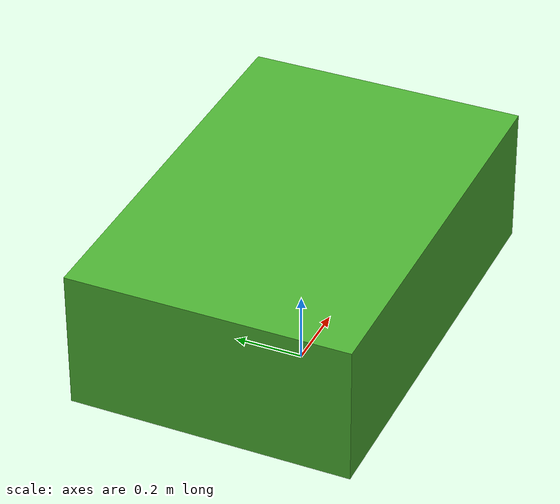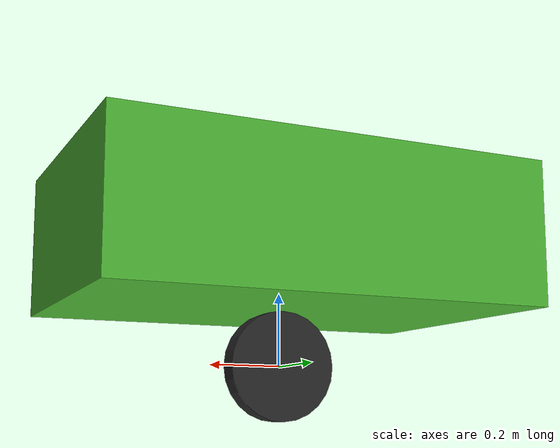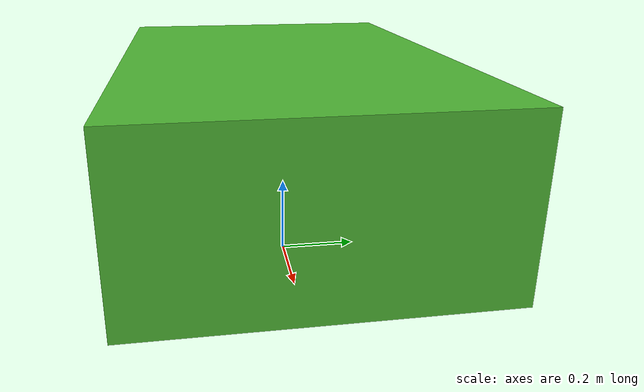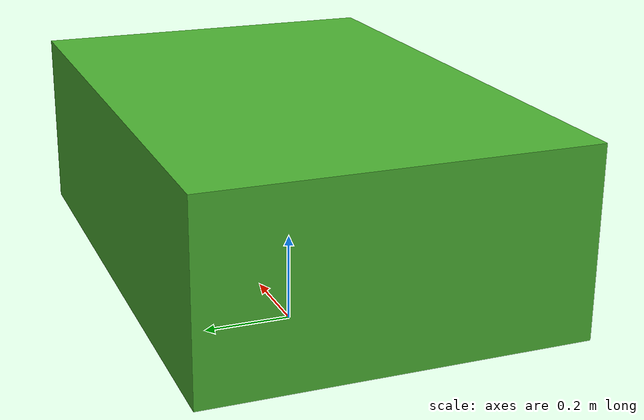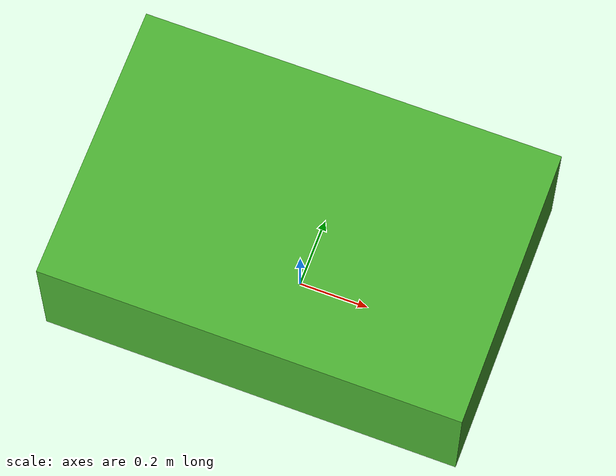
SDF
<?xml version="1.0" encoding="UTF-8"?>
<sdf version="1.8">
<model name="vineyard_mower">

  <!-- base_link: chassis center, origin at ground-plane projection  -->
  <link name="base_link">
    <pose>0 0 0  0 0 0</pose>

    <inertial>
      <pose>0 0 0.35  0 0 0</pose>
      <mass>250.0</mass>
      <inertia>
        <!-- Box 1.2x0.8x0.4: Ixx = m/12*(y^2+z^2), Iyy = m/12*(x^2+z^2), Izz = m/12*(x^2+y^2) -->
        <ixx>16.667</ixx>
        <ixy>0.0</ixy>
        <ixz>0.0</ixz>
        <iyy>33.333</iyy>
        <iyz>0.0</iyz>
        <izz>43.333</izz>
      </inertia>
    </inertial>

    <visual name="chassis_visual">
      <pose>0 0 0.35  0 0 0</pose>
      <geometry>
        <box>
          <size>1.2 0.8 0.4</size>
        </box>
      </geometry>
      <material>
        <ambient>0.2 0.5 0.1 1</ambient>
        <diffuse>0.3 0.7 0.2 1</diffuse>
        <specular>0.1 0.1 0.1 1</specular>
      </material>
    </visual>

    <collision name="chassis_collision">
      <pose>0 0 0.35  0 0 0</pose>
      <geometry>
        <box>
          <size>1.2 0.8 0.4</size>
        </box>
      </geometry>
    </collision>
  </link>

  <!-- front left wheel -->
  <link name="left_front_wheel">
    <pose>0 0 0  1.5708 0 0</pose>
    <inertial>
      <mass>2.0</mass>
      <inertia>
        <ixx>0.0225</ixx>   <!-- around rotation axis = 1/2*m*r² -->
        <ixy>0.0</ixy>
        <ixz>0.0</ixz>
        <iyy>0.0119</iyy>   <!-- transverse = 1/12*m*(3r²+L²) -->
        <iyz>0.0</iyz>
        <izz>0.0119</izz>
      </inertia>
    </inertial>
    <visual name="lf_wheel_visual">
      <geometry>
        <cylinder>
          <radius>0.15</radius>
          <length>0.06</length>
        </cylinder>
      </geometry>
      <material>
        <ambient>0.1 0.1 0.1 1</ambient>
        <diffuse>0.15 0.15 0.15 1</diffuse>
      </material>
    </visual>
    <collision name="lf_wheel_collision">
      <geometry>
        <cylinder>
          <radius>0.15</radius>
          <length>0.06</length>
        </cylinder>
      </geometry>
      <surface>
        <friction>
          <ode>
            <mu>1.0</mu>
            <mu2>1.0</mu2>
          </ode>
        </friction>
      </surface>
    </collision>
  </link>

  <!-- rear left wheel -->
  <link name="left_rear_wheel">
    <pose>0 0 0  1.5708 0 0</pose>
    <inertial>
      <mass>2.0</mass>
      <inertia>
        <ixx>0.0225</ixx>   <!-- around rotation axis = 1/2*m*r² -->
        <ixy>0.0</ixy>
        <ixz>0.0</ixz>
        <iyy>0.0119</iyy>   <!-- transverse = 1/12*m*(3r²+L²) -->
        <iyz>0.0</iyz>
        <izz>0.0119</izz>
      </inertia>
    </inertial>
    <visual name="lr_wheel_visual">
      <geometry>
        <cylinder>
          <radius>0.15</radius>
          <length>0.06</length>
        </cylinder>
      </geometry>
      <material>
        <ambient>0.1 0.1 0.1 1</ambient>
        <diffuse>0.15 0.15 0.15 1</diffuse>
      </material>
    </visual>
    <collision name="lr_wheel_collision">
      <geometry>
        <cylinder>
          <radius>0.15</radius>
          <length>0.06</length>
        </cylinder>
      </geometry>
      <surface>
        <friction>
          <ode>
            <mu>1.0</mu>
            <mu2>1.0</mu2>
          </ode>
        </friction>
      </surface>
    </collision>
  </link>

  <!-- front right wheel -->
  <link name="right_front_wheel">
    <pose>0 0 0  1.5708 0 0</pose>
    <inertial>
      <mass>2.0</mass>
      <inertia>
        <ixx>0.0225</ixx>   <!-- around rotation axis = 1/2*m*r² -->
        <ixy>0.0</ixy>
        <ixz>0.0</ixz>
        <iyy>0.0119</iyy>   <!-- transverse = 1/12*m*(3r²+L²) -->
        <iyz>0.0</iyz>
        <izz>0.0119</izz>
      </inertia>
    </inertial>
    <visual name="rf_wheel_visual">
      <geometry>
        <cylinder>
          <radius>0.15</radius>
          <length>0.06</length>
        </cylinder>
      </geometry>
      <material>
        <ambient>0.1 0.1 0.1 1</ambient>
        <diffuse>0.15 0.15 0.15 1</diffuse>
      </material>
    </visual>
    <collision name="rf_wheel_collision">
      <geometry>
        <cylinder>
          <radius>0.15</radius>
          <length>0.06</length>
        </cylinder>
      </geometry>
      <surface>
        <friction>
          <ode>
            <mu>1.0</mu>
            <mu2>1.0</mu2>
          </ode>
        </friction>
      </surface>
    </collision>
  </link>

  <!-- rear right wheel -->
  <link name="right_rear_wheel">
    <pose>0 0 0  1.5708 0 0</pose>
    <inertial>
      <mass>2.0</mass>
      <inertia>
        <ixx>0.0225</ixx>   <!-- around rotation axis = 1/2*m*r² -->
        <ixy>0.0</ixy>
        <ixz>0.0</ixz>
        <iyy>0.0119</iyy>   <!-- transverse = 1/12*m*(3r²+L²) -->
        <iyz>0.0</iyz>
        <izz>0.0119</izz>
      </inertia>
    </inertial>
    <visual name="rr_wheel_visual">
      <geometry>
        <cylinder>
          <radius>0.15</radius>
          <length>0.06</length>
        </cylinder>
      </geometry>
      <material>
        <ambient>0.1 0.1 0.1 1</ambient>
        <diffuse>0.15 0.15 0.15 1</diffuse>
      </material>
    </visual>
    <collision name="rr_wheel_collision">
      <geometry>
        <cylinder>
          <radius>0.15</radius>
          <length>0.06</length>
        </cylinder>
      </geometry>
      <surface>
        <friction>
          <ode>
            <mu>1.0</mu>
            <mu2>1.0</mu2>
          </ode>
        </friction>
      </surface>
    </collision>
  </link>

  <!-- front-left joint -->
  <joint name="left_front_joint" type="revolute">
    <parent>base_link</parent>
    <child>left_front_wheel</child>
    <pose>0.45 0.325 0.15  0 0 0</pose>
    <axis>
      <xyz>0 1 0</xyz>
      <limit>
        <lower>-1e16</lower>
        <upper>1e16</upper>
      </limit>
    </axis>
  </joint>

  <!-- rear-left joint -->
  <joint name="left_rear_joint" type="revolute">
    <parent>base_link</parent>
    <child>left_rear_wheel</child>
    <pose>-0.45 0.325 0.15  0 0 0</pose>
    <axis>
      <xyz>0 1 0</xyz>
      <limit>
        <lower>-1e16</lower>
        <upper>1e16</upper>
      </limit>
    </axis>
  </joint>

  <!-- front-right joint -->
  <joint name="right_front_joint" type="revolute">
    <parent>base_link</parent>
    <child>right_front_wheel</child>
    <pose>0.45 -0.325 0.15  0 0 0</pose>
    <axis>
      <xyz>0 1 0</xyz>
      <limit>
        <lower>-1e16</lower>
        <upper>1e16</upper>
      </limit>
    </axis>
  </joint>

  <!-- rear-right joint -->
  <joint name="right_rear_joint" type="revolute">
    <parent>base_link</parent>
    <child>right_rear_wheel</child>
    <pose>-0.45 -0.325 0.15  0 0 0</pose>
    <axis>
      <xyz>0 1 0</xyz>
      <limit>
        <lower>-1e16</lower>
        <upper>1e16</upper>
      </limit>
    </axis>
  </joint>

  <!-- Plugins                                                        -->

  <!-- DiffDrive: left wheels + right wheels driven together -->
  <plugin
    filename="gz-sim-diff-drive-system"
    name="gz::sim::systems::DiffDrive">
    <left_joint>left_front_joint</left_joint>
    <right_joint>right_front_joint</right_joint>
    <wheel_separation>0.65</wheel_separation>
    <wheel_radius>0.15</wheel_radius>
    <max_linear_acceleration>2.0</max_linear_acceleration>
    <max_angular_acceleration>2.0</max_angular_acceleration>
    <odom_publish_frequency>50.0</odom_publish_frequency>
  </plugin>

  <!-- JointStatePublisher: publish all joint states -->
  <plugin
    filename="gz-sim-joint-state-publisher-system"
    name="gz::sim::systems::JointStatePublisher">
    <joint_name>left_front_joint</joint_name>
    <joint_name>left_rear_joint</joint_name>
    <joint_name>right_front_joint</joint_name>
    <joint_name>right_rear_joint</joint_name>
    <update_rate>50.0</update_rate>
  </plugin>

  <!-- IMU: fixed at base_link origin -->
  <plugin
    filename="gz-sim-imu-system"
    name="gz::sim::systems::Imu">
    <topic>/model/vineyard_mower/imu</topic>
  </plugin>

  <!-- UserCommands: direct keyboard control (bypasses ROS2, works in WSL2) -->
  <plugin
    filename="gz-sim-user-commands-system"
    name="gz::sim::systems::UserCommands">
  </plugin>

</model>
</sdf>
